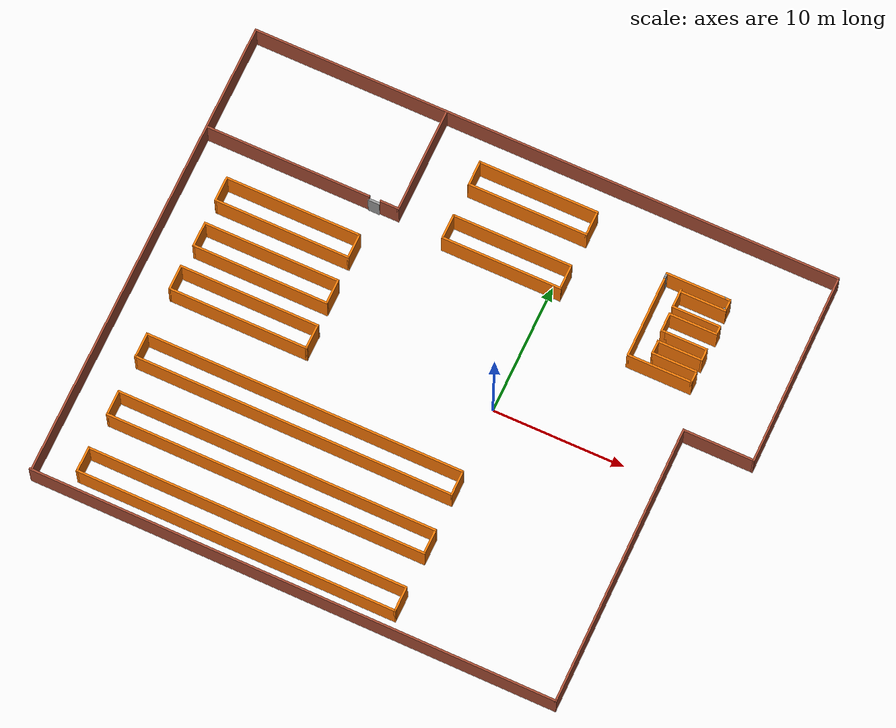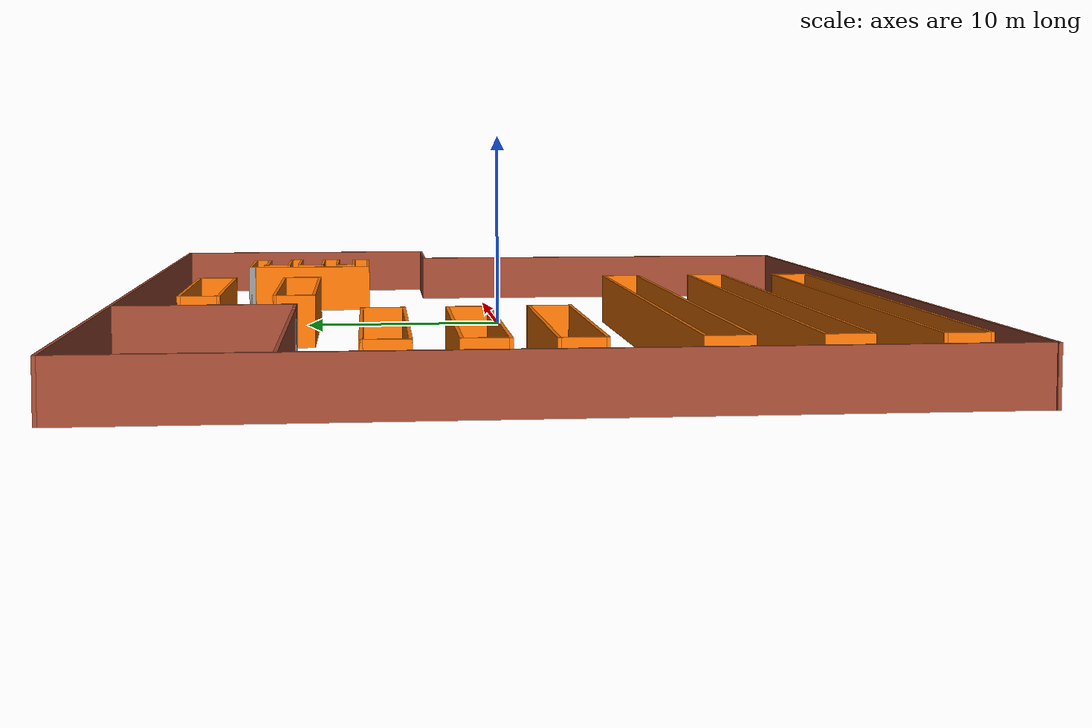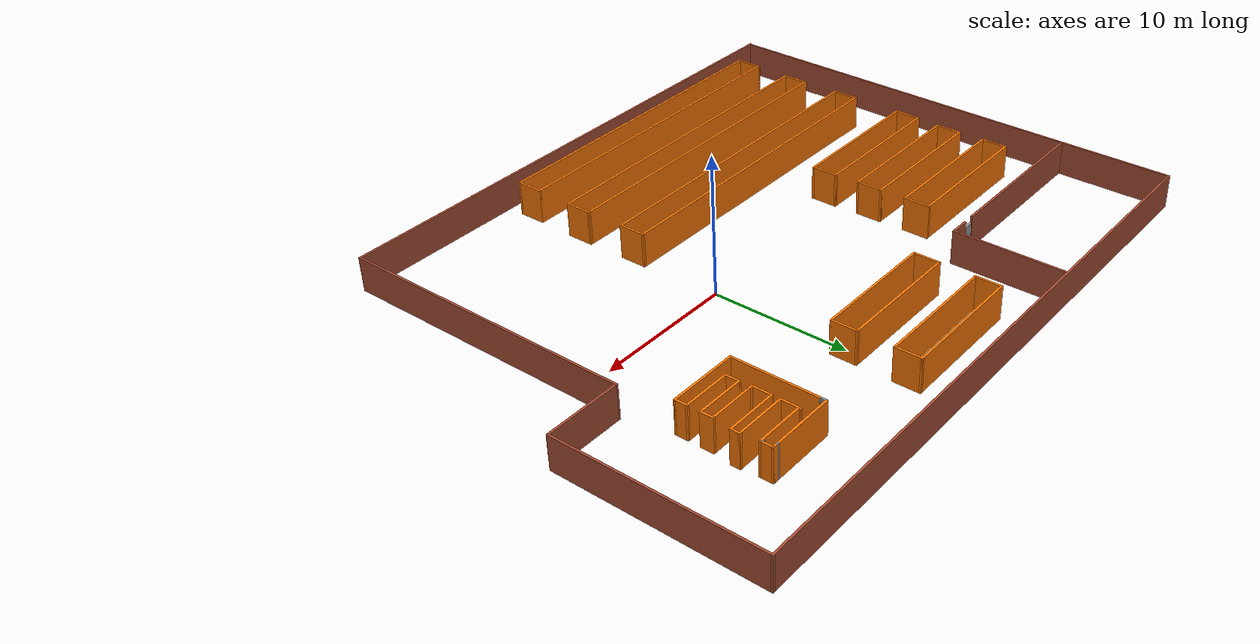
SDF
<?xml version='1.0'?>
<sdf version='1.6'>
  <model name='si_amr_factory'>
    <pose frame=''>-4.42081 0.056587 0 0 -0 0</pose>
    <link name='Door_0'>
      <collision name='Door_0_Collision'>
        <geometry>
          <box>
            <size>0.9 0.17 2</size>
          </box>
        </geometry>
        <pose frame=''>0 0 1 0 -0 0</pose>
      </collision>
      <visual name='Door_0_Visual'>
        <pose frame=''>0 0 1 0 -0 0</pose>
        <geometry>
          <box>
            <size>0.9 0.17 2</size>
          </box>
        </geometry>
        <material>
          <script>
            <uri>file://media/materials/scripts/gazebo.material</uri>
            <name>Gazebo/Grey</name>
          </script>
        </material>
      </visual>
      <pose frame=''>-9.48897 10.0106 0 0 -0 0</pose>
    </link>
    <link name='Wall_10'>
      <collision name='Wall_10_Collision'>
        <geometry>
          <box>
            <size>45.5 0.15 2.5</size>
          </box>
        </geometry>
        <pose frame=''>0 0 1.25 0 -0 0</pose>
      </collision>
      <visual name='Wall_10_Visual'>
        <pose frame=''>0 0 1.25 0 -0 0</pose>
        <geometry>
          <box>
            <size>45.5 0.15 2.5</size>
          </box>
        </geometry>
        <material>
          <script>
            <uri>file://media/materials/scripts/gazebo.material</uri>
            <name>Gazebo/Bricks</name>
          </script>
          <ambient>1 1 1 1</ambient>
        </material>
        <meta>
          <layer>0</layer>
        </meta>
      </visual>
      <pose frame=''>0.05 18.225 0 0 -0 3.14159</pose>
    </link>
    <link name='Wall_11'>
      <collision name='Wall_11_Collision'>
        <geometry>
          <box>
            <size>36.5 0.15 2.5</size>
          </box>
        </geometry>
        <pose frame=''>0 0 1.25 0 -0 0</pose>
      </collision>
      <visual name='Wall_11_Visual'>
        <pose frame=''>0 0 1.25 0 -0 0</pose>
        <geometry>
          <box>
            <size>36.5 0.15 2.5</size>
          </box>
        </geometry>
        <material>
          <script>
            <uri>file://media/materials/scripts/gazebo.material</uri>
            <name>Gazebo/Bricks</name>
          </script>
          <ambient>1 1 1 1</ambient>
        </material>
        <meta>
          <layer>0</layer>
        </meta>
      </visual>
      <pose frame=''>-22.625 0.049999 0 0 -0 -1.5708</pose>
    </link>
    <link name='Wall_111'>
      <collision name='Wall_111_Collision'>
        <geometry>
          <box>
            <size>0.15 0.15 2.5</size>
          </box>
        </geometry>
        <pose frame=''>0 0 1.25 0 -0 0</pose>
      </collision>
      <visual name='Wall_111_Visual'>
        <pose frame=''>0 0 1.25 0 -0 0</pose>
        <geometry>
          <box>
            <size>0.15 0.15 2.5</size>
          </box>
        </geometry>
        <material>
          <script>
            <uri>file://media/materials/scripts/gazebo.material</uri>
            <name>Gazebo/Grey</name>
          </script>
          <ambient>1 1 1 1</ambient>
        </material>
        <meta>
          <layer>0</layer>
        </meta>
      </visual>
      <pose frame=''>11.6057 13.1906 0 0 -0 0</pose>
    </link>
    <link name='Wall_116'>
      <collision name='Wall_116_Collision'>
        <geometry>
          <box>
            <size>6.50255 0.15 2.5</size>
          </box>
        </geometry>
        <pose frame=''>0 0 1.25 0 -0 0</pose>
      </collision>
      <visual name='Wall_116_Visual'>
        <pose frame=''>0 0 1.25 0 -0 0</pose>
        <geometry>
          <box>
            <size>6.50255 0.15 2.5</size>
          </box>
        </geometry>
        <material>
          <script>
            <uri>file://media/materials/scripts/gazebo.material</uri>
            <name>Gazebo/Grey</name>
          </script>
          <ambient>0.996078 0.47451 0.0196078 1</ambient>
        </material>
        <meta>
          <layer>0</layer>
        </meta>
      </visual>
      <pose frame=''>11.6031 10.0144 0 0 -0 1.56999</pose>
    </link>
    <link name='Wall_118'>
      <collision name='Wall_118_Collision'>
        <geometry>
          <box>
            <size>0.15 0.15 2.5</size>
          </box>
        </geometry>
        <pose frame=''>0 0 1.25 0 -0 0</pose>
      </collision>
      <visual name='Wall_118_Visual'>
        <pose frame=''>0 0 1.25 0 -0 0</pose>
        <geometry>
          <box>
            <size>0.15 0.15 2.5</size>
          </box>
        </geometry>
        <material>
          <script>
            <uri>file://media/materials/scripts/gazebo.material</uri>
            <name>Gazebo/Grey</name>
          </script>
          <ambient>1 1 1 1</ambient>
        </material>
        <meta>
          <layer>0</layer>
        </meta>
      </visual>
      <pose frame=''>11.6057 13.1906 0 0 -0 0</pose>
    </link>
    <link name='Wall_124'>
      <collision name='Wall_124_Collision'>
        <geometry>
          <box>
            <size>0.15 0.15 2.5</size>
          </box>
        </geometry>
        <pose frame=''>0 0 1.25 0 -0 0</pose>
      </collision>
      <visual name='Wall_124_Visual'>
        <pose frame=''>0 0 1.25 0 -0 0</pose>
        <geometry>
          <box>
            <size>0.15 0.15 2.5</size>
          </box>
        </geometry>
        <material>
          <script>
            <uri>file://media/materials/scripts/gazebo.material</uri>
            <name>Gazebo/Grey</name>
          </script>
          <ambient>1 1 1 1</ambient>
        </material>
        <meta>
          <layer>0</layer>
        </meta>
      </visual>
      <pose frame=''>11.6057 13.1906 0 0 -0 0</pose>
    </link>
    <link name='Wall_127'>
      <collision name='Wall_127_Collision'>
        <geometry>
          <box>
            <size>0.5 0.15 2.5</size>
          </box>
        </geometry>
        <pose frame=''>0 0 1.25 0 -0 0</pose>
      </collision>
      <visual name='Wall_127_Visual'>
        <pose frame=''>0 0 1.25 0 -0 0</pose>
        <geometry>
          <box>
            <size>0.5 0.15 2.5</size>
          </box>
        </geometry>
        <material>
          <script>
            <uri>file://media/materials/scripts/gazebo.material</uri>
            <name>Gazebo/Grey</name>
          </script>
          <ambient>1 1 1 1</ambient>
        </material>
        <meta>
          <layer>0</layer>
        </meta>
      </visual>
      <pose frame=''>11.6057 13.3656 0 0 -0 1.5708</pose>
    </link>
    <link name='Wall_13'>
      <collision name='Wall_13_Collision'>
        <geometry>
          <box>
            <size>2 0.15 2.5</size>
          </box>
        </geometry>
        <pose frame=''>0 0 1.25 0 -0 0</pose>
      </collision>
      <visual name='Wall_13_Visual'>
        <pose frame=''>0 0 1.25 0 -0 0</pose>
        <geometry>
          <box>
            <size>2 0.15 2.5</size>
          </box>
        </geometry>
        <material>
          <script>
            <uri>file://media/materials/scripts/gazebo.material</uri>
            <name>Gazebo/Grey</name>
          </script>
          <ambient>0.996078 0.47451 0.0196078 1</ambient>
        </material>
        <meta>
          <layer>0</layer>
        </meta>
      </visual>
      <pose frame=''>-19.7018 -16.0523 0 0 -0 -1.5708</pose>
    </link>
    <link name='Wall_131'>
      <collision name='Wall_131_Collision'>
        <geometry>
          <box>
            <size>0.15 0.15 2.5</size>
          </box>
        </geometry>
        <pose frame=''>0 0 1.25 0 -0 0</pose>
      </collision>
      <visual name='Wall_131_Visual'>
        <pose frame=''>0 0 1.25 0 -0 0</pose>
        <geometry>
          <box>
            <size>0.15 0.15 2.5</size>
          </box>
        </geometry>
        <material>
          <script>
            <uri>file://media/materials/scripts/gazebo.material</uri>
            <name>Gazebo/Grey</name>
          </script>
          <ambient>1 1 1 1</ambient>
        </material>
        <meta>
          <layer>0</layer>
        </meta>
      </visual>
      <pose frame=''>16.0783 13.5485 0 0 -0 0</pose>
    </link>
    <link name='Wall_135'>
      <collision name='Wall_135_Collision'>
        <geometry>
          <box>
            <size>1.5 0.15 2.5</size>
          </box>
        </geometry>
        <pose frame=''>0 0 1.25 0 -0 0</pose>
      </collision>
      <visual name='Wall_135_Visual'>
        <pose frame=''>0 0 1.25 0 -0 0</pose>
        <geometry>
          <box>
            <size>1.5 0.15 2.5</size>
          </box>
        </geometry>
        <material>
          <script>
            <uri>file://media/materials/scripts/gazebo.material</uri>
            <name>Gazebo/Grey</name>
          </script>
          <ambient>0.996078 0.47451 0.0196078 1</ambient>
        </material>
        <meta>
          <layer>0</layer>
        </meta>
      </visual>
      <pose frame=''>13.0006 12.1131 0 0 -0 1.5708</pose>
    </link>
    <link name='Wall_137'>
      <collision name='Wall_137_Collision'>
        <geometry>
          <box>
            <size>0.15 0.15 2.5</size>
          </box>
        </geometry>
        <pose frame=''>0 0 1.25 0 -0 0</pose>
      </collision>
      <visual name='Wall_137_Visual'>
        <pose frame=''>0 0 1.25 0 -0 0</pose>
        <geometry>
          <box>
            <size>0.15 0.15 2.5</size>
          </box>
        </geometry>
        <material>
          <script>
            <uri>file://media/materials/scripts/gazebo.material</uri>
            <name>Gazebo/Grey</name>
          </script>
          <ambient>1 1 1 1</ambient>
        </material>
        <meta>
          <layer>0</layer>
        </meta>
      </visual>
      <pose frame=''>16.3506 12.7881 0 0 -0 0</pose>
    </link>
    <link name='Wall_14'>
      <collision name='Wall_14_Collision'>
        <geometry>
          <box>
            <size>24.5 0.15 2.5</size>
          </box>
        </geometry>
        <pose frame=''>0 0 1.25 0 -0 0</pose>
      </collision>
      <visual name='Wall_14_Visual'>
        <pose frame=''>0 0 1.25 0 -0 0</pose>
        <geometry>
          <box>
            <size>24.5 0.15 2.5</size>
          </box>
        </geometry>
        <material>
          <script>
            <uri>file://media/materials/scripts/gazebo.material</uri>
            <name>Gazebo/Grey</name>
          </script>
          <ambient>0.996078 0.47451 0.0196078 1</ambient>
        </material>
        <meta>
          <layer>0</layer>
        </meta>
      </visual>
      <pose frame=''>-7.52685 -16.9773 0 0 -0 0</pose>
    </link>
    <link name='Wall_140'>
      <collision name='Wall_140_Collision'>
        <geometry>
          <box>
            <size>5 0.15 2.5</size>
          </box>
        </geometry>
        <pose frame=''>0 0 1.25 0 -0 0</pose>
      </collision>
      <visual name='Wall_140_Visual'>
        <pose frame=''>0 0 1.25 0 -0 0</pose>
        <geometry>
          <box>
            <size>5 0.15 2.5</size>
          </box>
        </geometry>
        <material>
          <script>
            <uri>file://media/materials/scripts/gazebo.material</uri>
            <name>Gazebo/Grey</name>
          </script>
          <ambient>0.996078 0.47451 0.0196078 1</ambient>
        </material>
        <meta>
          <layer>0</layer>
        </meta>
      </visual>
      <pose frame=''>14.0307 13.5406 0 0 -0 0</pose>
    </link>
    <link name='Wall_142'>
      <collision name='Wall_142_Collision'>
        <geometry>
          <box>
            <size>1 0.15 2.5</size>
          </box>
        </geometry>
        <pose frame=''>0 0 1.25 0 -0 0</pose>
      </collision>
      <visual name='Wall_142_Visual'>
        <pose frame=''>0 0 1.25 0 -0 0</pose>
        <geometry>
          <box>
            <size>1 0.15 2.5</size>
          </box>
        </geometry>
        <material>
          <script>
            <uri>file://media/materials/scripts/gazebo.material</uri>
            <name>Gazebo/Grey</name>
          </script>
          <ambient>0.996078 0.47451 0.0196078 1</ambient>
        </material>
        <meta>
          <layer>0</layer>
        </meta>
      </visual>
      <pose frame=''>16.4557 13.1156 0 0 -0 -1.5708</pose>
    </link>
    <link name='Wall_143'>
      <collision name='Wall_143_Collision'>
        <geometry>
          <box>
            <size>3.5 0.15 2.5</size>
          </box>
        </geometry>
        <pose frame=''>0 0 1.25 0 -0 0</pose>
      </collision>
      <visual name='Wall_143_Visual'>
        <pose frame=''>0 0 1.25 0 -0 0</pose>
        <geometry>
          <box>
            <size>3.5 0.15 2.5</size>
          </box>
        </geometry>
        <material>
          <script>
            <uri>file://media/materials/scripts/gazebo.material</uri>
            <name>Gazebo/Grey</name>
          </script>
          <ambient>0.996078 0.47451 0.0196078 1</ambient>
        </material>
        <meta>
          <layer>0</layer>
        </meta>
      </visual>
      <pose frame=''>14.7807 12.6906 0 0 -0 3.14159</pose>
    </link>
    <link name='Wall_16'>
      <collision name='Wall_16_Collision'>
        <geometry>
          <box>
            <size>24.5 0.15 2.5</size>
          </box>
        </geometry>
        <pose frame=''>0 0 1.25 0 -0 0</pose>
      </collision>
      <visual name='Wall_16_Visual'>
        <pose frame=''>0 0 1.25 0 -0 0</pose>
        <geometry>
          <box>
            <size>24.5 0.15 2.5</size>
          </box>
        </geometry>
        <material>
          <script>
            <uri>file://media/materials/scripts/gazebo.material</uri>
            <name>Gazebo/Grey</name>
          </script>
          <ambient>0.996078 0.47451 0.0196078 1</ambient>
        </material>
        <meta>
          <layer>0</layer>
        </meta>
      </visual>
      <pose frame=''>-7.52685 -15.1273 0 0 -0 0</pose>
    </link>
    <link name='Wall_17'>
      <collision name='Wall_17_Collision'>
        <geometry>
          <box>
            <size>2 0.15 2.5</size>
          </box>
        </geometry>
        <pose frame=''>0 0 1.25 0 -0 0</pose>
      </collision>
      <visual name='Wall_17_Visual'>
        <pose frame=''>0 0 1.25 0 -0 0</pose>
        <geometry>
          <box>
            <size>2 0.15 2.5</size>
          </box>
        </geometry>
        <material>
          <script>
            <uri>file://media/materials/scripts/gazebo.material</uri>
            <name>Gazebo/Grey</name>
          </script>
          <ambient>0.996078 0.47451 0.0196078 1</ambient>
        </material>
        <meta>
          <layer>0</layer>
        </meta>
      </visual>
      <pose frame=''>4.64815 -16.0523 0 0 -0 -1.5708</pose>
    </link>
    <link name='Wall_19'>
      <collision name='Wall_19_Collision'>
        <geometry>
          <box>
            <size>2 0.15 2.5</size>
          </box>
        </geometry>
        <pose frame=''>0 0 1.25 0 -0 0</pose>
      </collision>
      <visual name='Wall_19_Visual'>
        <pose frame=''>0 0 1.25 0 -0 0</pose>
        <geometry>
          <box>
            <size>2 0.15 2.5</size>
          </box>
        </geometry>
        <material>
          <script>
            <uri>file://media/materials/scripts/gazebo.material</uri>
            <name>Gazebo/Grey</name>
          </script>
          <ambient>0.996078 0.47451 0.0196078 1</ambient>
        </material>
        <meta>
          <layer>0</layer>
        </meta>
      </visual>
      <pose frame=''>-19.6096 -11.4377 0 0 -0 -1.5708</pose>
    </link>
    <link name='Wall_20'>
      <collision name='Wall_20_Collision'>
        <geometry>
          <box>
            <size>24.5 0.15 2.5</size>
          </box>
        </geometry>
        <pose frame=''>0 0 1.25 0 -0 0</pose>
      </collision>
      <visual name='Wall_20_Visual'>
        <pose frame=''>0 0 1.25 0 -0 0</pose>
        <geometry>
          <box>
            <size>24.5 0.15 2.5</size>
          </box>
        </geometry>
        <material>
          <script>
            <uri>file://media/materials/scripts/gazebo.material</uri>
            <name>Gazebo/Grey</name>
          </script>
          <ambient>0.996078 0.47451 0.0196078 1</ambient>
        </material>
        <meta>
          <layer>0</layer>
        </meta>
      </visual>
      <pose frame=''>-7.43455 -12.3627 0 0 -0 0</pose>
    </link>
    <link name='Wall_21'>
      <collision name='Wall_21_Collision'>
        <geometry>
          <box>
            <size>2 0.15 2.5</size>
          </box>
        </geometry>
        <pose frame=''>0 0 1.25 0 -0 0</pose>
      </collision>
      <visual name='Wall_21_Visual'>
        <pose frame=''>0 0 1.25 0 -0 0</pose>
        <geometry>
          <box>
            <size>2 0.15 2.5</size>
          </box>
        </geometry>
        <material>
          <script>
            <uri>file://media/materials/scripts/gazebo.material</uri>
            <name>Gazebo/Grey</name>
          </script>
          <ambient>0.996078 0.47451 0.0196078 1</ambient>
        </material>
        <meta>
          <layer>0</layer>
        </meta>
      </visual>
      <pose frame=''>4.74045 -11.4377 0 0 -0 1.5708</pose>
    </link>
    <link name='Wall_22'>
      <collision name='Wall_22_Collision'>
        <geometry>
          <box>
            <size>24.5 0.15 2.5</size>
          </box>
        </geometry>
        <pose frame=''>0 0 1.25 0 -0 0</pose>
      </collision>
      <visual name='Wall_22_Visual'>
        <pose frame=''>0 0 1.25 0 -0 0</pose>
        <geometry>
          <box>
            <size>24.5 0.15 2.5</size>
          </box>
        </geometry>
        <material>
          <script>
            <uri>file://media/materials/scripts/gazebo.material</uri>
            <name>Gazebo/Grey</name>
          </script>
          <ambient>0.996078 0.47451 0.0196078 1</ambient>
        </material>
        <meta>
          <layer>0</layer>
        </meta>
      </visual>
      <pose frame=''>-7.43455 -10.5127 0 0 -0 3.14159</pose>
    </link>
    <link name='Wall_24'>
      <collision name='Wall_24_Collision'>
        <geometry>
          <box>
            <size>2 0.15 2.5</size>
          </box>
        </geometry>
        <pose frame=''>0 0 1.25 0 -0 0</pose>
      </collision>
      <visual name='Wall_24_Visual'>
        <pose frame=''>0 0 1.25 0 -0 0</pose>
        <geometry>
          <box>
            <size>2 0.15 2.5</size>
          </box>
        </geometry>
        <material>
          <script>
            <uri>file://media/materials/scripts/gazebo.material</uri>
            <name>Gazebo/Grey</name>
          </script>
          <ambient>0.996078 0.47451 0.0196078 1</ambient>
        </material>
        <meta>
          <layer>0</layer>
        </meta>
      </visual>
      <pose frame=''>-19.6711 -6.76162 0 0 -0 -1.5708</pose>
    </link>
    <link name='Wall_25'>
      <collision name='Wall_25_Collision'>
        <geometry>
          <box>
            <size>24.5 0.15 2.5</size>
          </box>
        </geometry>
        <pose frame=''>0 0 1.25 0 -0 0</pose>
      </collision>
      <visual name='Wall_25_Visual'>
        <pose frame=''>0 0 1.25 0 -0 0</pose>
        <geometry>
          <box>
            <size>24.5 0.15 2.5</size>
          </box>
        </geometry>
        <material>
          <script>
            <uri>file://media/materials/scripts/gazebo.material</uri>
            <name>Gazebo/Grey</name>
          </script>
          <ambient>0.996078 0.47451 0.0196078 1</ambient>
        </material>
        <meta>
          <layer>0</layer>
        </meta>
      </visual>
      <pose frame=''>-7.49608 -7.68662 0 0 -0 0</pose>
    </link>
    <link name='Wall_26'>
      <collision name='Wall_26_Collision'>
        <geometry>
          <box>
            <size>2 0.15 2.5</size>
          </box>
        </geometry>
        <pose frame=''>0 0 1.25 0 -0 0</pose>
      </collision>
      <visual name='Wall_26_Visual'>
        <pose frame=''>0 0 1.25 0 -0 0</pose>
        <geometry>
          <box>
            <size>2 0.15 2.5</size>
          </box>
        </geometry>
        <material>
          <script>
            <uri>file://media/materials/scripts/gazebo.material</uri>
            <name>Gazebo/Grey</name>
          </script>
          <ambient>0.996078 0.47451 0.0196078 1</ambient>
        </material>
        <meta>
          <layer>0</layer>
        </meta>
      </visual>
      <pose frame=''>4.67892 -6.76162 0 0 -0 1.5708</pose>
    </link>
    <link name='Wall_27'>
      <collision name='Wall_27_Collision'>
        <geometry>
          <box>
            <size>24.5 0.15 2.5</size>
          </box>
        </geometry>
        <pose frame=''>0 0 1.25 0 -0 0</pose>
      </collision>
      <visual name='Wall_27_Visual'>
        <pose frame=''>0 0 1.25 0 -0 0</pose>
        <geometry>
          <box>
            <size>24.5 0.15 2.5</size>
          </box>
        </geometry>
        <material>
          <script>
            <uri>file://media/materials/scripts/gazebo.material</uri>
            <name>Gazebo/Grey</name>
          </script>
          <ambient>0.996078 0.47451 0.0196078 1</ambient>
        </material>
        <meta>
          <layer>0</layer>
        </meta>
      </visual>
      <pose frame=''>-7.49608 -5.83662 0 0 -0 3.14159</pose>
    </link>
    <link name='Wall_29'>
      <collision name='Wall_29_Collision'>
        <geometry>
          <box>
            <size>2 0.15 2.5</size>
          </box>
        </geometry>
        <pose frame=''>0 0 1.25 0 -0 0</pose>
      </collision>
      <visual name='Wall_29_Visual'>
        <pose frame=''>0 0 1.25 0 -0 0</pose>
        <geometry>
          <box>
            <size>2 0.15 2.5</size>
          </box>
        </geometry>
        <material>
          <script>
            <uri>file://media/materials/scripts/gazebo.material</uri>
            <name>Gazebo/Grey</name>
          </script>
          <ambient>0.996078 0.47451 0.0196078 1</ambient>
        </material>
        <meta>
          <layer>0</layer>
        </meta>
      </visual>
      <pose frame=''>-19.7018 -1.19335 0 0 -0 -1.5708</pose>
    </link>
    <link name='Wall_30'>
      <collision name='Wall_30_Collision'>
        <geometry>
          <box>
            <size>10.7852 0.15 2.5</size>
          </box>
        </geometry>
        <pose frame=''>0 0 1.25 0 -0 0</pose>
      </collision>
      <visual name='Wall_30_Visual'>
        <pose frame=''>0 0 1.25 0 -0 0</pose>
        <geometry>
          <box>
            <size>10.7852 0.15 2.5</size>
          </box>
        </geometry>
        <material>
          <script>
            <uri>file://media/materials/scripts/gazebo.material</uri>
            <name>Gazebo/Grey</name>
          </script>
          <ambient>0.996078 0.47451 0.0196078 1</ambient>
        </material>
        <meta>
          <layer>0</layer>
        </meta>
      </visual>
      <pose frame=''>-14.3843 -2.11835 0 0 -0 0</pose>
    </link>
    <link name='Wall_31'>
      <collision name='Wall_31_Collision'>
        <geometry>
          <box>
            <size>2 0.15 2.5</size>
          </box>
        </geometry>
        <pose frame=''>0 0 1.25 0 -0 0</pose>
      </collision>
      <visual name='Wall_31_Visual'>
        <pose frame=''>0 0 1.25 0 -0 0</pose>
        <geometry>
          <box>
            <size>2 0.15 2.5</size>
          </box>
        </geometry>
        <material>
          <script>
            <uri>file://media/materials/scripts/gazebo.material</uri>
            <name>Gazebo/Grey</name>
          </script>
          <ambient>0.996078 0.47451 0.0196078 1</ambient>
        </material>
        <meta>
          <layer>0</layer>
        </meta>
      </visual>
      <pose frame=''>-9.08426 -1.19335 0 0 -0 1.5708</pose>
    </link>
    <link name='Wall_32'>
      <collision name='Wall_32_Collision'>
        <geometry>
          <box>
            <size>10.7852 0.15 2.5</size>
          </box>
        </geometry>
        <pose frame=''>0 0 1.25 0 -0 0</pose>
      </collision>
      <visual name='Wall_32_Visual'>
        <pose frame=''>0 0 1.25 0 -0 0</pose>
        <geometry>
          <box>
            <size>10.7852 0.15 2.5</size>
          </box>
        </geometry>
        <material>
          <script>
            <uri>file://media/materials/scripts/gazebo.material</uri>
            <name>Gazebo/Grey</name>
          </script>
          <ambient>0.996078 0.47451 0.0196078 1</ambient>
        </material>
        <meta>
          <layer>0</layer>
        </meta>
      </visual>
      <pose frame=''>-14.3843 -0.268347 0 0 -0 3.14159</pose>
    </link>
    <link name='Wall_36'>
      <collision name='Wall_36_Collision'>
        <geometry>
          <box>
            <size>10.5 0.15 2.5</size>
          </box>
        </geometry>
        <pose frame=''>0 0 1.25 0 -0 0</pose>
      </collision>
      <visual name='Wall_36_Visual'>
        <pose frame=''>0 0 1.25 0 -0 0</pose>
        <geometry>
          <box>
            <size>10.5 0.15 2.5</size>
          </box>
        </geometry>
        <material>
          <script>
            <uri>file://media/materials/scripts/gazebo.material</uri>
            <name>Gazebo/Grey</name>
          </script>
          <ambient>0.996078 0.47451 0.0196078 1</ambient>
        </material>
        <meta>
          <layer>0</layer>
        </meta>
      </visual>
      <pose frame=''>-14.3863 1.51596 0 0 -0 3.14159</pose>
    </link>
    <link name='Wall_38'>
      <collision name='Wall_38_Collision'>
        <geometry>
          <box>
            <size>2 0.15 2.5</size>
          </box>
        </geometry>
        <pose frame=''>0 0 1.25 0 -0 0</pose>
      </collision>
      <visual name='Wall_38_Visual'>
        <pose frame=''>0 0 1.25 0 -0 0</pose>
        <geometry>
          <box>
            <size>2 0.15 2.5</size>
          </box>
        </geometry>
        <material>
          <script>
            <uri>file://media/materials/scripts/gazebo.material</uri>
            <name>Gazebo/Grey</name>
          </script>
          <ambient>0.996078 0.47451 0.0196078 1</ambient>
        </material>
        <meta>
          <layer>0</layer>
        </meta>
      </visual>
      <pose frame=''>-19.5613 2.44096 0 0 -0 1.5708</pose>
    </link>
    <link name='Wall_39'>
      <collision name='Wall_39_Collision'>
        <geometry>
          <box>
            <size>10.5 0.15 2.5</size>
          </box>
        </geometry>
        <pose frame=''>0 0 1.25 0 -0 0</pose>
      </collision>
      <visual name='Wall_39_Visual'>
        <pose frame=''>0 0 1.25 0 -0 0</pose>
        <geometry>
          <box>
            <size>10.5 0.15 2.5</size>
          </box>
        </geometry>
        <material>
          <script>
            <uri>file://media/materials/scripts/gazebo.material</uri>
            <name>Gazebo/Grey</name>
          </script>
          <ambient>0.996078 0.47451 0.0196078 1</ambient>
        </material>
        <meta>
          <layer>0</layer>
        </meta>
      </visual>
      <pose frame=''>-14.3863 3.36596 0 0 -0 0</pose>
    </link>
    <link name='Wall_40'>
      <collision name='Wall_40_Collision'>
        <geometry>
          <box>
            <size>2 0.15 2.5</size>
          </box>
        </geometry>
        <pose frame=''>0 0 1.25 0 -0 0</pose>
      </collision>
      <visual name='Wall_40_Visual'>
        <pose frame=''>0 0 1.25 0 -0 0</pose>
        <geometry>
          <box>
            <size>2 0.15 2.5</size>
          </box>
        </geometry>
        <material>
          <script>
            <uri>file://media/materials/scripts/gazebo.material</uri>
            <name>Gazebo/Grey</name>
          </script>
          <ambient>0.996078 0.47451 0.0196078 1</ambient>
        </material>
        <meta>
          <layer>0</layer>
        </meta>
      </visual>
      <pose frame=''>-9.21134 2.44096 0 0 -0 -1.5708</pose>
    </link>
    <link name='Wall_44'>
      <collision name='Wall_44_Collision'>
        <geometry>
          <box>
            <size>2 0.15 2.5</size>
          </box>
        </geometry>
        <pose frame=''>0 0 1.25 0 -0 0</pose>
      </collision>
      <visual name='Wall_44_Visual'>
        <pose frame=''>0 0 1.25 0 -0 0</pose>
        <geometry>
          <box>
            <size>2 0.15 2.5</size>
          </box>
        </geometry>
        <material>
          <script>
            <uri>file://media/materials/scripts/gazebo.material</uri>
            <name>Gazebo/Grey</name>
          </script>
          <ambient>0.996078 0.47451 0.0196078 1</ambient>
        </material>
        <meta>
          <layer>0</layer>
        </meta>
      </visual>
      <pose frame=''>-19.6307 6.18449 0 0 -0 -1.5708</pose>
    </link>
    <link name='Wall_45'>
      <collision name='Wall_45_Collision'>
        <geometry>
          <box>
            <size>10.5 0.15 2.5</size>
          </box>
        </geometry>
        <pose frame=''>0 0 1.25 0 -0 0</pose>
      </collision>
      <visual name='Wall_45_Visual'>
        <pose frame=''>0 0 1.25 0 -0 0</pose>
        <geometry>
          <box>
            <size>10.5 0.15 2.5</size>
          </box>
        </geometry>
        <material>
          <script>
            <uri>file://media/materials/scripts/gazebo.material</uri>
            <name>Gazebo/Grey</name>
          </script>
          <ambient>0.996078 0.47451 0.0196078 1</ambient>
        </material>
        <meta>
          <layer>0</layer>
        </meta>
      </visual>
      <pose frame=''>-14.4557 5.25949 0 0 -0 0</pose>
    </link>
    <link name='Wall_46'>
      <collision name='Wall_46_Collision'>
        <geometry>
          <box>
            <size>2 0.15 2.5</size>
          </box>
        </geometry>
        <pose frame=''>0 0 1.25 0 -0 0</pose>
      </collision>
      <visual name='Wall_46_Visual'>
        <pose frame=''>0 0 1.25 0 -0 0</pose>
        <geometry>
          <box>
            <size>2 0.15 2.5</size>
          </box>
        </geometry>
        <material>
          <script>
            <uri>file://media/materials/scripts/gazebo.material</uri>
            <name>Gazebo/Grey</name>
          </script>
          <ambient>0.996078 0.47451 0.0196078 1</ambient>
        </material>
        <meta>
          <layer>0</layer>
        </meta>
      </visual>
      <pose frame=''>-9.28068 6.18449 0 0 -0 1.5708</pose>
    </link>
    <link name='Wall_47'>
      <collision name='Wall_47_Collision'>
        <geometry>
          <box>
            <size>10.5 0.15 2.5</size>
          </box>
        </geometry>
        <pose frame=''>0 0 1.25 0 -0 0</pose>
      </collision>
      <visual name='Wall_47_Visual'>
        <pose frame=''>0 0 1.25 0 -0 0</pose>
        <geometry>
          <box>
            <size>10.5 0.15 2.5</size>
          </box>
        </geometry>
        <material>
          <script>
            <uri>file://media/materials/scripts/gazebo.material</uri>
            <name>Gazebo/Grey</name>
          </script>
          <ambient>0.996078 0.47451 0.0196078 1</ambient>
        </material>
        <meta>
          <layer>0</layer>
        </meta>
      </visual>
      <pose frame=''>-14.4557 7.10949 0 0 -0 3.14159</pose>
    </link>
    <link name='Wall_6'>
      <collision name='Wall_6_Collision'>
        <geometry>
          <box>
            <size>40.25 0.15 2.5</size>
          </box>
        </geometry>
        <pose frame=''>0 0 1.25 0 -0 0</pose>
      </collision>
      <visual name='Wall_6_Visual'>
        <pose frame=''>0 0 1.25 0 -0 0</pose>
        <geometry>
          <box>
            <size>40.25 0.15 2.5</size>
          </box>
        </geometry>
        <material>
          <script>
            <uri>file://media/materials/scripts/gazebo.material</uri>
            <name>Gazebo/Bricks</name>
          </script>
          <ambient>1 1 1 1</ambient>
        </material>
        <meta>
          <layer>0</layer>
        </meta>
      </visual>
      <pose frame=''>-2.675 -18.225 0 0 -0 0</pose>
    </link>
    <link name='Wall_60'>
      <collision name='Wall_60_Collision'>
        <geometry>
          <box>
            <size>12.75 0.15 2.5</size>
          </box>
        </geometry>
        <pose frame=''>0 0 1.25 0 -0 0</pose>
      </collision>
      <visual name='Wall_60_Visual'>
        <pose frame=''>0 0 1.25 0 -0 0</pose>
        <geometry>
          <box>
            <size>12.75 0.15 2.5</size>
          </box>
        </geometry>
        <material>
          <script>
            <uri>file://media/materials/scripts/gazebo.material</uri>
            <name>Gazebo/Bricks</name>
          </script>
          <ambient>1 1 1 1</ambient>
        </material>
        <meta>
          <layer>0</layer>
        </meta>
      </visual>
      <pose frame=''>-16.2209 10.0489 0 0 -0 0</pose>
    </link>
    <link name='Wall_64'>
      <collision name='Wall_64_Collision'>
        <geometry>
          <box>
            <size>1.5 0.15 2.5</size>
          </box>
        </geometry>
        <pose frame=''>0 0 1.25 0 -0 0</pose>
      </collision>
      <visual name='Wall_64_Visual'>
        <pose frame=''>0 0 1.25 0 -0 0</pose>
        <geometry>
          <box>
            <size>1.5 0.15 2.5</size>
          </box>
        </geometry>
        <material>
          <script>
            <uri>file://media/materials/scripts/gazebo.material</uri>
            <name>Gazebo/Bricks</name>
          </script>
          <ambient>1 1 1 1</ambient>
        </material>
        <meta>
          <layer>0</layer>
        </meta>
      </visual>
      <pose frame=''>-8.29444 10.0642 0 0 -0 0</pose>
    </link>
    <link name='Wall_65'>
      <collision name='Wall_65_Collision'>
        <geometry>
          <box>
            <size>8.25 0.15 2.5</size>
          </box>
        </geometry>
        <pose frame=''>0 0 1.25 0 -0 0</pose>
      </collision>
      <visual name='Wall_65_Visual'>
        <pose frame=''>0 0 1.25 0 -0 0</pose>
        <geometry>
          <box>
            <size>8.25 0.15 2.5</size>
          </box>
        </geometry>
        <material>
          <script>
            <uri>file://media/materials/scripts/gazebo.material</uri>
            <name>Gazebo/Bricks</name>
          </script>
          <ambient>1 1 1 1</ambient>
        </material>
        <meta>
          <layer>0</layer>
        </meta>
      </visual>
      <pose frame=''>-7.61944 14.1142 0 0 -0 1.5708</pose>
    </link>
    <link name='Wall_67'>
      <collision name='Wall_67_Collision'>
        <geometry>
          <box>
            <size>2 0.15 2.5</size>
          </box>
        </geometry>
        <pose frame=''>0 0 1.25 0 -0 0</pose>
      </collision>
      <visual name='Wall_67_Visual'>
        <pose frame=''>0 0 1.25 0 -0 0</pose>
        <geometry>
          <box>
            <size>2 0.15 2.5</size>
          </box>
        </geometry>
        <material>
          <script>
            <uri>file://media/materials/scripts/gazebo.material</uri>
            <name>Gazebo/Grey</name>
          </script>
          <ambient>0.996078 0.47451 0.0196078 1</ambient>
        </material>
        <meta>
          <layer>0</layer>
        </meta>
      </visual>
      <pose frame=''>-3.85892 10.3128 0 0 -0 -1.5708</pose>
    </link>
    <link name='Wall_68'>
      <collision name='Wall_68_Collision'>
        <geometry>
          <box>
            <size>9.25 0.15 2.5</size>
          </box>
        </geometry>
        <pose frame=''>0 0 1.25 0 -0 0</pose>
      </collision>
      <visual name='Wall_68_Visual'>
        <pose frame=''>0 0 1.25 0 -0 0</pose>
        <geometry>
          <box>
            <size>9.25 0.15 2.5</size>
          </box>
        </geometry>
        <material>
          <script>
            <uri>file://media/materials/scripts/gazebo.material</uri>
            <name>Gazebo/Grey</name>
          </script>
          <ambient>0.996078 0.47451 0.0196078 1</ambient>
        </material>
        <meta>
          <layer>0</layer>
        </meta>
      </visual>
      <pose frame=''>0.691083 9.38777 0 0 -0 0</pose>
    </link>
    <link name='Wall_69'>
      <collision name='Wall_69_Collision'>
        <geometry>
          <box>
            <size>2 0.15 2.5</size>
          </box>
        </geometry>
        <pose frame=''>0 0 1.25 0 -0 0</pose>
      </collision>
      <visual name='Wall_69_Visual'>
        <pose frame=''>0 0 1.25 0 -0 0</pose>
        <geometry>
          <box>
            <size>2 0.15 2.5</size>
          </box>
        </geometry>
        <material>
          <script>
            <uri>file://media/materials/scripts/gazebo.material</uri>
            <name>Gazebo/Grey</name>
          </script>
          <ambient>0.996078 0.47451 0.0196078 1</ambient>
        </material>
        <meta>
          <layer>0</layer>
        </meta>
      </visual>
      <pose frame=''>5.24108 10.3128 0 0 -0 1.5708</pose>
    </link>
    <link name='Wall_7'>
      <collision name='Wall_7_Collision'>
        <geometry>
          <box>
            <size>21.75 0.15 2.5</size>
          </box>
        </geometry>
        <pose frame=''>0 0 1.25 0 -0 0</pose>
      </collision>
      <visual name='Wall_7_Visual'>
        <pose frame=''>0 0 1.25 0 -0 0</pose>
        <geometry>
          <box>
            <size>21.75 0.15 2.5</size>
          </box>
        </geometry>
        <material>
          <script>
            <uri>file://media/materials/scripts/gazebo.material</uri>
            <name>Gazebo/Bricks</name>
          </script>
          <ambient>1 1 1 1</ambient>
        </material>
        <meta>
          <layer>0</layer>
        </meta>
      </visual>
      <pose frame=''>17.375 -7.425 0 0 -0 1.5708</pose>
    </link>
    <link name='Wall_70'>
      <collision name='Wall_70_Collision'>
        <geometry>
          <box>
            <size>9.25 0.15 2.5</size>
          </box>
        </geometry>
        <pose frame=''>0 0 1.25 0 -0 0</pose>
      </collision>
      <visual name='Wall_70_Visual'>
        <pose frame=''>0 0 1.25 0 -0 0</pose>
        <geometry>
          <box>
            <size>9.25 0.15 2.5</size>
          </box>
        </geometry>
        <material>
          <script>
            <uri>file://media/materials/scripts/gazebo.material</uri>
            <name>Gazebo/Grey</name>
          </script>
          <ambient>0.996078 0.47451 0.0196078 1</ambient>
        </material>
        <meta>
          <layer>0</layer>
        </meta>
      </visual>
      <pose frame=''>0.691083 11.2378 0 0 -0 3.14159</pose>
    </link>
    <link name='Wall_72'>
      <collision name='Wall_72_Collision'>
        <geometry>
          <box>
            <size>2 0.15 2.5</size>
          </box>
        </geometry>
        <pose frame=''>0 0 1.25 0 -0 0</pose>
      </collision>
      <visual name='Wall_72_Visual'>
        <pose frame=''>0 0 1.25 0 -0 0</pose>
        <geometry>
          <box>
            <size>2 0.15 2.5</size>
          </box>
        </geometry>
        <material>
          <script>
            <uri>file://media/materials/scripts/gazebo.material</uri>
            <name>Gazebo/Grey</name>
          </script>
          <ambient>0.996078 0.47451 0.0196078 1</ambient>
        </material>
        <meta>
          <layer>0</layer>
        </meta>
      </visual>
      <pose frame=''>-3.85017 14.764 0 0 -0 -1.5708</pose>
    </link>
    <link name='Wall_73'>
      <collision name='Wall_73_Collision'>
        <geometry>
          <box>
            <size>9.25 0.15 2.5</size>
          </box>
        </geometry>
        <pose frame=''>0 0 1.25 0 -0 0</pose>
      </collision>
      <visual name='Wall_73_Visual'>
        <pose frame=''>0 0 1.25 0 -0 0</pose>
        <geometry>
          <box>
            <size>9.25 0.15 2.5</size>
          </box>
        </geometry>
        <material>
          <script>
            <uri>file://media/materials/scripts/gazebo.material</uri>
            <name>Gazebo/Grey</name>
          </script>
          <ambient>0.996078 0.47451 0.0196078 1</ambient>
        </material>
        <meta>
          <layer>0</layer>
        </meta>
      </visual>
      <pose frame=''>0.699828 13.839 0 0 -0 0</pose>
    </link>
    <link name='Wall_74'>
      <collision name='Wall_74_Collision'>
        <geometry>
          <box>
            <size>2 0.15 2.5</size>
          </box>
        </geometry>
        <pose frame=''>0 0 1.25 0 -0 0</pose>
      </collision>
      <visual name='Wall_74_Visual'>
        <pose frame=''>0 0 1.25 0 -0 0</pose>
        <geometry>
          <box>
            <size>2 0.15 2.5</size>
          </box>
        </geometry>
        <material>
          <script>
            <uri>file://media/materials/scripts/gazebo.material</uri>
            <name>Gazebo/Grey</name>
          </script>
          <ambient>0.996078 0.47451 0.0196078 1</ambient>
        </material>
        <meta>
          <layer>0</layer>
        </meta>
      </visual>
      <pose frame=''>5.24983 14.764 0 0 -0 1.5708</pose>
    </link>
    <link name='Wall_75'>
      <collision name='Wall_75_Collision'>
        <geometry>
          <box>
            <size>9.25 0.15 2.5</size>
          </box>
        </geometry>
        <pose frame=''>0 0 1.25 0 -0 0</pose>
      </collision>
      <visual name='Wall_75_Visual'>
        <pose frame=''>0 0 1.25 0 -0 0</pose>
        <geometry>
          <box>
            <size>9.25 0.15 2.5</size>
          </box>
        </geometry>
        <material>
          <script>
            <uri>file://media/materials/scripts/gazebo.material</uri>
            <name>Gazebo/Grey</name>
          </script>
          <ambient>0.996078 0.47451 0.0196078 1</ambient>
        </material>
        <meta>
          <layer>0</layer>
        </meta>
      </visual>
      <pose frame=''>0.699828 15.689 0 0 -0 3.14159</pose>
    </link>
    <link name='Wall_77'>
      <collision name='Wall_77_Collision'>
        <geometry>
          <box>
            <size>5 0.15 2.5</size>
          </box>
        </geometry>
        <pose frame=''>0 0 1.25 0 -0 0</pose>
      </collision>
      <visual name='Wall_77_Visual'>
        <pose frame=''>0 0 1.25 0 -0 0</pose>
        <geometry>
          <box>
            <size>5 0.15 2.5</size>
          </box>
        </geometry>
        <material>
          <script>
            <uri>file://media/materials/scripts/gazebo.material</uri>
            <name>Gazebo/Grey</name>
          </script>
          <ambient>0.996078 0.47451 0.0196078 1</ambient>
        </material>
        <meta>
          <layer>0</layer>
        </meta>
      </visual>
      <pose frame=''>14.0256 6.83808 0 0 -0 0</pose>
    </link>
    <link name='Wall_78'>
      <collision name='Wall_78_Collision'>
        <geometry>
          <box>
            <size>1 0.15 2.5</size>
          </box>
        </geometry>
        <pose frame=''>0 0 1.25 0 -0 0</pose>
      </collision>
      <visual name='Wall_78_Visual'>
        <pose frame=''>0 0 1.25 0 -0 0</pose>
        <geometry>
          <box>
            <size>1 0.15 2.5</size>
          </box>
        </geometry>
        <material>
          <script>
            <uri>file://media/materials/scripts/gazebo.material</uri>
            <name>Gazebo/Grey</name>
          </script>
          <ambient>0.996078 0.47451 0.0196078 1</ambient>
        </material>
        <meta>
          <layer>0</layer>
        </meta>
      </visual>
      <pose frame=''>16.4506 7.26308 0 0 -0 1.5708</pose>
    </link>
    <link name='Wall_8'>
      <collision name='Wall_8_Collision'>
        <geometry>
          <box>
            <size>5.5 0.15 2.5</size>
          </box>
        </geometry>
        <pose frame=''>0 0 1.25 0 -0 0</pose>
      </collision>
      <visual name='Wall_8_Visual'>
        <pose frame=''>0 0 1.25 0 -0 0</pose>
        <geometry>
          <box>
            <size>5.5 0.15 2.5</size>
          </box>
        </geometry>
        <material>
          <script>
            <uri>file://media/materials/scripts/gazebo.material</uri>
            <name>Gazebo/Bricks</name>
          </script>
          <ambient>1 1 1 1</ambient>
        </material>
        <meta>
          <layer>0</layer>
        </meta>
      </visual>
      <pose frame=''>20.05 3.375 0 0 -0 0</pose>
    </link>
    <link name='Wall_84'>
      <collision name='Wall_84_Collision'>
        <geometry>
          <box>
            <size>3.48651 0.15 2.5</size>
          </box>
        </geometry>
        <pose frame=''>0 0 1.25 0 -0 0</pose>
      </collision>
      <visual name='Wall_84_Visual'>
        <pose frame=''>0 0 1.25 0 -0 0</pose>
        <geometry>
          <box>
            <size>3.48651 0.15 2.5</size>
          </box>
        </geometry>
        <material>
          <script>
            <uri>file://media/materials/scripts/gazebo.material</uri>
            <name>Gazebo/Grey</name>
          </script>
          <ambient>0.996078 0.47451 0.0196078 1</ambient>
        </material>
        <meta>
          <layer>0</layer>
        </meta>
      </visual>
      <pose frame=''>14.7688 8.63808 0 0 -0 0</pose>
    </link>
    <link name='Wall_85'>
      <collision name='Wall_85_Collision'>
        <geometry>
          <box>
            <size>1 0.15 2.5</size>
          </box>
        </geometry>
        <pose frame=''>0 0 1.25 0 -0 0</pose>
      </collision>
      <visual name='Wall_85_Visual'>
        <pose frame=''>0 0 1.25 0 -0 0</pose>
        <geometry>
          <box>
            <size>1 0.15 2.5</size>
          </box>
        </geometry>
        <material>
          <script>
            <uri>file://media/materials/scripts/gazebo.material</uri>
            <name>Gazebo/Grey</name>
          </script>
          <ambient>0.996078 0.47451 0.0196078 1</ambient>
        </material>
        <meta>
          <layer>0</layer>
        </meta>
      </visual>
      <pose frame=''>16.4438 9.06308 0 0 -0 1.5708</pose>
    </link>
    <link name='Wall_86'>
      <collision name='Wall_86_Collision'>
        <geometry>
          <box>
            <size>3.23651 0.15 2.5</size>
          </box>
        </geometry>
        <pose frame=''>0 0 1.25 0 -0 0</pose>
      </collision>
      <visual name='Wall_86_Visual'>
        <pose frame=''>0 0 1.25 0 -0 0</pose>
        <geometry>
          <box>
            <size>3.23651 0.15 2.5</size>
          </box>
        </geometry>
        <material>
          <script>
            <uri>file://media/materials/scripts/gazebo.material</uri>
            <name>Gazebo/Grey</name>
          </script>
          <ambient>0.996078 0.47451 0.0196078 1</ambient>
        </material>
        <meta>
          <layer>0</layer>
        </meta>
      </visual>
      <pose frame=''>14.8938 9.48808 0 0 -0 3.14159</pose>
    </link>
    <link name='Wall_88'>
      <collision name='Wall_88_Collision'>
        <geometry>
          <box>
            <size>3.5 0.15 2.5</size>
          </box>
        </geometry>
        <pose frame=''>0 0 1.25 0 -0 0</pose>
      </collision>
      <visual name='Wall_88_Visual'>
        <pose frame=''>0 0 1.25 0 -0 0</pose>
        <geometry>
          <box>
            <size>3.5 0.15 2.5</size>
          </box>
        </geometry>
        <material>
          <script>
            <uri>file://media/materials/scripts/gazebo.material</uri>
            <name>Gazebo/Grey</name>
          </script>
          <ambient>0.996078 0.47451 0.0196078 1</ambient>
        </material>
        <meta>
          <layer>0</layer>
        </meta>
      </visual>
      <pose frame=''>14.7756 7.68808 0 0 -0 3.14159</pose>
    </link>
    <link name='Wall_89'>
      <collision name='Wall_89_Collision'>
        <geometry>
          <box>
            <size>1.1 0.15 2.5</size>
          </box>
        </geometry>
        <pose frame=''>0 0 1.25 0 -0 0</pose>
      </collision>
      <visual name='Wall_89_Visual'>
        <pose frame=''>0 0 1.25 0 -0 0</pose>
        <geometry>
          <box>
            <size>1.1 0.15 2.5</size>
          </box>
        </geometry>
        <material>
          <script>
            <uri>file://media/materials/scripts/gazebo.material</uri>
            <name>Gazebo/Grey</name>
          </script>
          <ambient>0.996078 0.47451 0.0196078 1</ambient>
        </material>
        <meta>
          <layer>0</layer>
        </meta>
      </visual>
      <pose frame=''>13.1006 8.16308 0 0 -0 1.5708</pose>
    </link>
    <link name='Wall_9'>
      <collision name='Wall_9_Collision'>
        <geometry>
          <box>
            <size>15 0.15 2.5</size>
          </box>
        </geometry>
        <pose frame=''>0 0 1.25 0 -0 0</pose>
      </collision>
      <visual name='Wall_9_Visual'>
        <pose frame=''>0 0 1.25 0 -0 0</pose>
        <geometry>
          <box>
            <size>15 0.15 2.5</size>
          </box>
        </geometry>
        <material>
          <script>
            <uri>file://media/materials/scripts/gazebo.material</uri>
            <name>Gazebo/Bricks</name>
          </script>
          <ambient>1 1 1 1</ambient>
        </material>
        <meta>
          <layer>0</layer>
        </meta>
      </visual>
      <pose frame=''>22.725 10.8 0 0 -0 1.5708</pose>
    </link>
    <link name='Wall_91'>
      <collision name='Wall_91_Collision'>
        <geometry>
          <box>
            <size>0.5 0.15 2.5</size>
          </box>
        </geometry>
        <pose frame=''>0 0 1.25 0 -0 0</pose>
      </collision>
      <visual name='Wall_91_Visual'>
        <pose frame=''>0 0 1.25 0 -0 0</pose>
        <geometry>
          <box>
            <size>0.5 0.15 2.5</size>
          </box>
        </geometry>
        <material>
          <script>
            <uri>file://media/materials/scripts/gazebo.material</uri>
            <name>Gazebo/Grey</name>
          </script>
          <ambient>0.996078 0.47451 0.0196078 1</ambient>
        </material>
        <meta>
          <layer>0</layer>
        </meta>
      </visual>
      <pose frame=''>13.1756 9.48808 0 0 -0 3.14159</pose>
    </link>
    <link name='Wall_92'>
      <collision name='Wall_92_Collision'>
        <geometry>
          <box>
            <size>1.5 0.15 2.5</size>
          </box>
        </geometry>
        <pose frame=''>0 0 1.25 0 -0 0</pose>
      </collision>
      <visual name='Wall_92_Visual'>
        <pose frame=''>0 0 1.25 0 -0 0</pose>
        <geometry>
          <box>
            <size>1.5 0.15 2.5</size>
          </box>
        </geometry>
        <material>
          <script>
            <uri>file://media/materials/scripts/gazebo.material</uri>
            <name>Gazebo/Grey</name>
          </script>
          <ambient>0.996078 0.47451 0.0196078 1</ambient>
        </material>
        <meta>
          <layer>0</layer>
        </meta>
      </visual>
      <pose frame=''>13.0006 10.1631 0 0 -0 1.5708</pose>
    </link>
    <link name='Wall_93'>
      <collision name='Wall_93_Collision'>
        <geometry>
          <box>
            <size>3.75 0.15 2.5</size>
          </box>
        </geometry>
        <pose frame=''>0 0 1.25 0 -0 0</pose>
      </collision>
      <visual name='Wall_93_Visual'>
        <pose frame=''>0 0 1.25 0 -0 0</pose>
        <geometry>
          <box>
            <size>3.75 0.15 2.5</size>
          </box>
        </geometry>
        <material>
          <script>
            <uri>file://media/materials/scripts/gazebo.material</uri>
            <name>Gazebo/Grey</name>
          </script>
          <ambient>0.996078 0.47451 0.0196078 1</ambient>
        </material>
        <meta>
          <layer>0</layer>
        </meta>
      </visual>
      <pose frame=''>14.8006 10.8381 0 0 -0 0</pose>
    </link>
    <link name='Wall_94'>
      <collision name='Wall_94_Collision'>
        <geometry>
          <box>
            <size>0.75 0.15 2.5</size>
          </box>
        </geometry>
        <pose frame=''>0 0 1.25 0 -0 0</pose>
      </collision>
      <visual name='Wall_94_Visual'>
        <pose frame=''>0 0 1.25 0 -0 0</pose>
        <geometry>
          <box>
            <size>0.75 0.15 2.5</size>
          </box>
        </geometry>
        <material>
          <script>
            <uri>file://media/materials/scripts/gazebo.material</uri>
            <name>Gazebo/Grey</name>
          </script>
          <ambient>0.996078 0.47451 0.0196078 1</ambient>
        </material>
        <meta>
          <layer>0</layer>
        </meta>
      </visual>
      <pose frame=''>16.6006 11.1381 0 0 -0 1.5708</pose>
    </link>
    <link name='Wall_95'>
      <collision name='Wall_95_Collision'>
        <geometry>
          <box>
            <size>3.75 0.15 2.5</size>
          </box>
        </geometry>
        <pose frame=''>0 0 1.25 0 -0 0</pose>
      </collision>
      <visual name='Wall_95_Visual'>
        <pose frame=''>0 0 1.25 0 -0 0</pose>
        <geometry>
          <box>
            <size>3.75 0.15 2.5</size>
          </box>
        </geometry>
        <material>
          <script>
            <uri>file://media/materials/scripts/gazebo.material</uri>
            <name>Gazebo/Grey</name>
          </script>
          <ambient>0.996078 0.47451 0.0196078 1</ambient>
        </material>
        <meta>
          <layer>0</layer>
        </meta>
      </visual>
      <pose frame=''>14.8006 11.4381 0 0 -0 3.14159</pose>
    </link>
    <static>1</static>
  </model>
</sdf>
